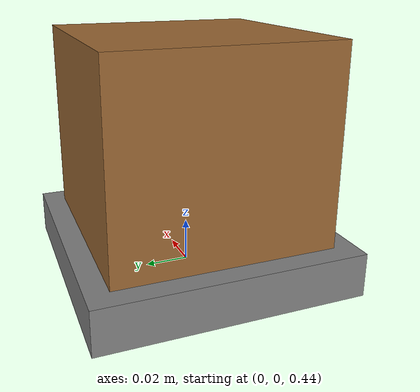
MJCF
<mujoco model="xmsim contact">
  <compiler angle="radian" autolimits="true"/>
  <option timestep="0.002" integrator="implicitfast"/>

  <worldbody>
    <light pos="0 0 2" dir="0 0 -1" directional="true"/>
    <geom name="floor" type="plane" size="0 0 0.05" condim="3"
          friction="1.0 0.005 0.0001" rgba="0.3 0.35 0.4 1"/>
    <!-- starts well above the plane: airborne (zero contact) until it falls -->
    <body name="foot" pos="0 0 0.5">
      <freejoint name="foot_free"/>
      <geom name="foot" type="box" size="0.05 0.05 0.05" mass="2.0"
            friction="1.0 0.005 0.0001" rgba="0.6 0.4 0.2 1"/>
      <!-- touch zone hugging the box's underside, so only ground contacts count -->
      <site name="foot_touch" type="box" pos="0 0 -0.05" size="0.06 0.06 0.01"/>
      <site name="imu" pos="0 0 0" size="0.005"/>
    </body>
  </worldbody>

  <sensor>
    <touch site="foot_touch" name="foot_touch"/>
  </sensor>
</mujoco>
